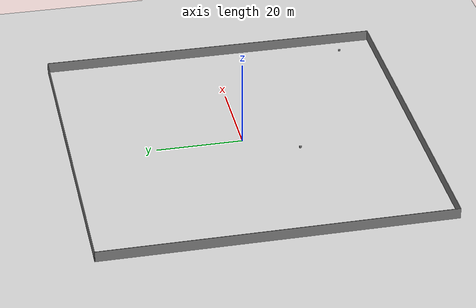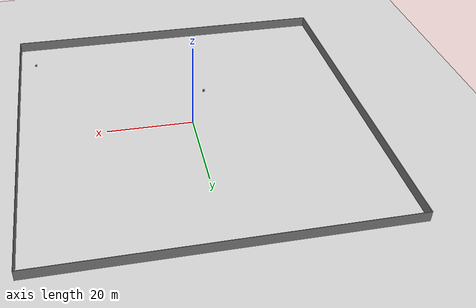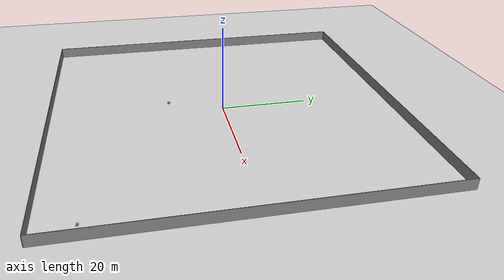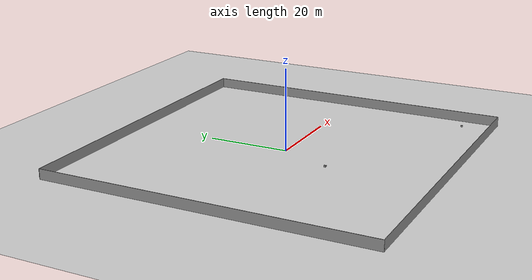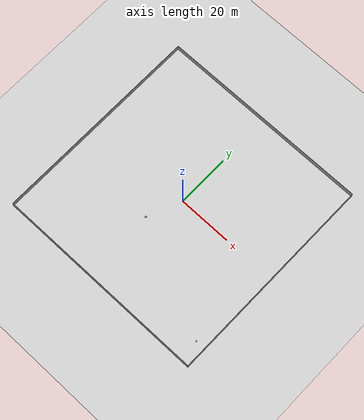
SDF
<sdf version="1.6">
 <world name="default">
  <model name="ground_plane">
   <static>1</static>
   <link name="link">
    <collision name="collision">
     <geometry><plane><normal>0 0 1</normal><size>80 80</size></plane></geometry>
     <surface>
      <contact><collide_bitmask>65535</collide_bitmask></contact>
      <friction><ode><mu>100</mu><mu2>50</mu2></ode></friction>
     </surface>
     <max_contacts>15</max_contacts>
    </collision>
    <visual name="visual">
     <cast_shadows>0</cast_shadows>
     <geometry><plane><normal>0 0 1</normal><size>80 80</size></plane></geometry>
     <material>
      <script><uri>file://media/materials/scripts/gazebo.material</uri><name>Gazebo/Grey</name></script>
     </material>
    </visual>
   </link>
  </model>
  <model name="outsidewall.sdf">
   <link name="Wall_3">
    <collision name="Wall_3_Collision">
     <geometry><box><size>80 0.10 2.5</size></box></geometry>
     <pose>0 0 1.25 0 -0 0</pose>
    </collision>
    <visual name="Wall_3_Visual">
     <pose>0 0 1.25 0 -0 0</pose>
     <geometry><box><size>80 0.10 2.5</size></box></geometry>
     <material>
      <script><uri>file://media/materials/scripts/gazebo.material</uri><name>Gazebo/Grey</name></script>
      <ambient>1 1 1 1</ambient>
     </material>
     <meta><layer>0</layer></meta>
    </visual>
    <pose>0 39.95 0 0 -0 0</pose>
   </link>
   <link name="Wall_5">
    <collision name="Wall_5_Collision">
     <geometry><box><size>80 0.10 2.5</size></box></geometry>
     <pose>0 0 1.25 0 -0 0</pose>
    </collision>
    <visual name="Wall_5_Visual">
     <pose>0 0 1.25 0 -0 0</pose>
     <geometry><box><size>80 0.10 2.5</size></box></geometry>
     <material>
      <script><uri>file://media/materials/scripts/gazebo.material</uri><name>Gazebo/Grey</name></script>
      <ambient>1 1 1 1</ambient>
     </material>
     <meta><layer>0</layer></meta>
    </visual>
    <pose>-39.95 0 0 0 -0 1.5707</pose>
   </link>
   <link name="Wall_6">
    <collision name="Wall_6_Collision">
     <geometry><box><size>80 0.10 2.5</size></box></geometry>
     <pose>0 0 1.25 0 -0 0</pose>
    </collision>
    <visual name="Wall_6_Visual">
     <pose>0 0 1.25 0 -0 0</pose>
     <geometry><box><size>80 0.10 2.5</size></box></geometry>
     <material>
      <script><uri>file://media/materials/scripts/gazebo.material</uri><name>Gazebo/Grey</name></script>
      <ambient>1 1 1 1</ambient>
     </material>
     <meta><layer>0</layer></meta>
    </visual>
    <pose>0 -39.95 0 0 -0 0</pose>
   </link>
   <link name="Wall_7">
    <collision name="Wall_7_Collision">
     <geometry><box><size>80 0.10 2.5</size></box></geometry>
     <pose>0 0 1.25 0 -0 0</pose>
    </collision>
    <visual name="Wall_7_Visual">
     <pose>0 0 1.25 0 -0 0</pose>
     <geometry><box><size>80 0.10 2.5</size></box></geometry>
     <material>
      <script><uri>file://media/materials/scripts/gazebo.material</uri><name>Gazebo/Grey</name></script>
      <ambient>1 1 1 1</ambient>
     </material>
     <meta><layer>0</layer></meta>
    </visual>
    <pose>39.95 0 0 0 -0 1.5707</pose>
   </link>
   <static>1</static>
  </model>
  <model name="box_d=50">
   <link name="link_2">
    <inertial>
     <mass>1</mass>
     <inertia>
      <ixx>0.166667</ixx>
      <ixy>0</ixy>
      <ixz>0</ixz>
      <iyy>0.166667</iyy>
      <iyz>0</iyz>
      <izz>0.166667</izz>
     </inertia>
    </inertial>
    <pose>-5.15 -12.45 0 0 -0 0</pose>
    <visual name="visual">
     <geometry><box><size>0.5 0.5 0.5</size></box></geometry>
     <material>
      <lighting>1</lighting>
      <script><uri>file://media/materials/scripts/gazebo.material</uri><name>Gazebo/Grey</name></script>
      <shader type="vertex"><normal_map>__default__</normal_map></shader>
      <ambient>0.3 0.3 0.3 1</ambient>
      <diffuse>0.7 0.7 0.7 1</diffuse>
      <specular>0.01 0.01 0.01 1</specular>
      <emissive>0 0 0 1</emissive>
     </material>
    </visual>
    <collision name="collision">
     <geometry><box><size>0.5 0.5 0.5</size></box></geometry>
     <surface>
      <friction>
       <ode><mu>1</mu><mu2>1</mu2><fdir1>0 0 0</fdir1><slip1>0</slip1><slip2>0</slip2></ode>
       <torsional>
        <coefficient>1</coefficient>
        <patch_radius>0</patch_radius>
        <surface_radius>0</surface_radius>
        <use_patch_radius>1</use_patch_radius>
        <ode><slip>0</slip></ode>
       </torsional>
      </friction>
      <bounce><restitution_coefficient>0</restitution_coefficient><threshold>1e+06</threshold></bounce>
      <contact>
       <collide_without_contact>0</collide_without_contact>
       <collide_without_contact_bitmask>1</collide_without_contact_bitmask>
       <collide_bitmask>1</collide_bitmask>
       <ode>
        <soft_cfm>0</soft_cfm>
        <soft_erp>0.2</soft_erp>
        <kp>1e+13</kp>
        <kd>1</kd>
        <max_vel>0.01</max_vel>
        <min_depth>0</min_depth>
       </ode>
       <bullet>
        <split_impulse>1</split_impulse>
        <split_impulse_penetration_threshold>-0.01</split_impulse_penetration_threshold>
        <soft_cfm>0</soft_cfm>
        <soft_erp>0.2</soft_erp>
        <kp>1e+13</kp>
        <kd>1</kd>
       </bullet>
      </contact>
     </surface>
    </collision>
   </link>
   <static>0</static>
  </model>
  <model name="cylinder_d=50">
   <link name="link_0">
    <inertial>
     <mass>1</mass>
     <inertia><ixx>0.145833</ixx><ixy>0</ixy><ixz>0</ixz><iyy>0.145833</iyy><iyz>0</iyz><izz>0.125</izz></inertia>
    </inertial>
    <pose>36.05 -31.85 0 0 -0 0</pose>
    <visual name="visual">
     <geometry><cylinder><radius>0.25</radius><length>0.5</length></cylinder></geometry>
     <material>
      <lighting>1</lighting>
      <script><uri>file://media/materials/scripts/gazebo.material</uri><name>Gazebo/Grey</name></script>
      <shader type="vertex"><normal_map>__default__</normal_map></shader>
      <ambient>0.3 0.3 0.3 1</ambient>
      <diffuse>0.7 0.7 0.7 1</diffuse>
      <specular>0.01 0.01 0.01 1</specular>
      <emissive>0 0 0 1</emissive>
     </material>
    </visual>
    <collision name="collision">
     <geometry><cylinder><radius>0.25</radius><length>0.5</length></cylinder></geometry>
     <surface>
      <friction>
       <ode><mu>1</mu><mu2>1</mu2><fdir1>0 0 0</fdir1><slip1>0</slip1><slip2>0</slip2></ode>
       <torsional>
        <coefficient>1</coefficient>
        <patch_radius>0</patch_radius>
        <surface_radius>0</surface_radius>
        <use_patch_radius>1</use_patch_radius>
        <ode><slip>0</slip></ode>
       </torsional>
      </friction>
      <bounce><restitution_coefficient>0</restitution_coefficient><threshold>1e+06</threshold></bounce>
      <contact>
       <collide_without_contact>0</collide_without_contact>
       <collide_without_contact_bitmask>1</collide_without_contact_bitmask>
       <collide_bitmask>1</collide_bitmask>
       <ode>
        <soft_cfm>0</soft_cfm>
        <soft_erp>0.2</soft_erp>
        <kp>1e+13</kp>
        <kd>1</kd>
        <max_vel>0.01</max_vel>
        <min_depth>0</min_depth>
       </ode>
       <bullet>
        <split_impulse>1</split_impulse>
        <split_impulse_penetration_threshold>-0.01</split_impulse_penetration_threshold>
        <soft_cfm>0</soft_cfm>
        <soft_erp>0.2</soft_erp>
        <kp>1e+13</kp>
        <kd>1</kd>
       </bullet>
      </contact>
     </surface>
    </collision>
   </link>
   <static>0</static>
  </model>
 </world>
</sdf>
